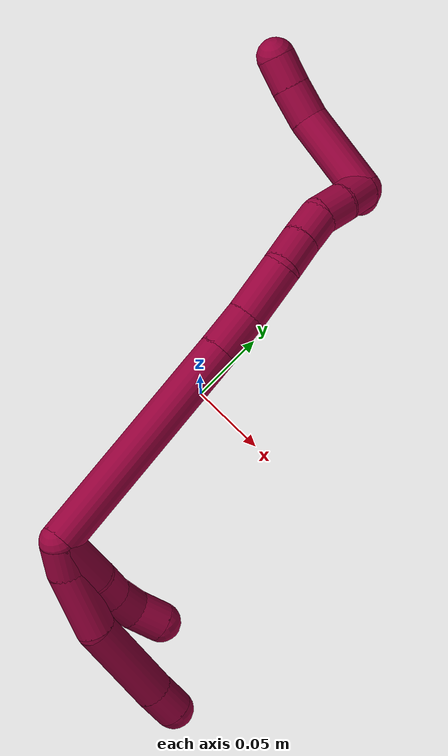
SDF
<sdf version="1.7">
 <world name="default">
  <model name="8">
   <static>0</static>
   <link name="8">
    <collision name="collision-cylinder-e_1_2_8">
     <pose>0.000541 -0.002257 -0.010693 2.93356 0.04943 0.465025</pose>
     <geometry><cylinder><radius>0.0125</radius><length>0.021884</length></cylinder></geometry>
     <surface>
      <friction><ode><mu>1.16</mu><mu2>1.16</mu2><slip1>0</slip1><slip2>0</slip2></ode></friction>
      <contact><ode><kp>1e+06</kp><kd>1</kd><max_vel>0</max_vel><min_depth>0.001</min_depth></ode></contact>
     </surface>
    </collision>
    <visual name="visual-cylinder-e_1_2_8">
     <pose>0.000541 -0.002257 -0.010693 2.93356 0.04943 0.465025</pose>
     <geometry><cylinder><radius>0.0125</radius><length>0.021884</length></cylinder></geometry>
     <material><ambient>0.584314 0 0.227451 1</ambient></material>
    </visual>
    <collision name="collision-cylinder-e_2_8_9">
     <pose>0.006916 -0.007237 -0.042164 3.0113 0.271568 2.25064</pose>
     <geometry><cylinder><radius>0.0125</radius><length>0.043506</length></cylinder></geometry>
     <surface>
      <friction><ode><mu>1.16</mu><mu2>1.16</mu2><slip1>0</slip1><slip2>0</slip2></ode></friction>
      <contact><ode><kp>1e+06</kp><kd>1</kd><max_vel>0</max_vel><min_depth>0.001</min_depth></ode></contact>
     </surface>
    </collision>
    <visual name="visual-cylinder-e_2_8_9">
     <pose>0.006916 -0.007237 -0.042164 3.0113 0.271568 2.25064</pose>
     <geometry><cylinder><radius>0.0125</radius><length>0.043506</length></cylinder></geometry>
     <material><ambient>0.584314 0 0.227451 1</ambient></material>
    </visual>
    <collision name="collision-cylinder-e_3_9_10">
     <pose>0.020113 -0.004919 -0.093479 -2.97802 0.233518 -1.92167</pose>
     <geometry><cylinder><radius>0.0125</radius><length>0.063626</length></cylinder></geometry>
     <surface>
      <friction><ode><mu>1.16</mu><mu2>1.16</mu2><slip1>0</slip1><slip2>0</slip2></ode></friction>
      <contact><ode><kp>1e+06</kp><kd>1</kd><max_vel>0</max_vel><min_depth>0.001</min_depth></ode></contact>
     </surface>
    </collision>
    <visual name="visual-cylinder-e_3_9_10">
     <pose>0.020113 -0.004919 -0.093479 -2.97802 0.233518 -1.92167</pose>
     <geometry><cylinder><radius>0.0125</radius><length>0.063626</length></cylinder></geometry>
     <material><ambient>0.584314 0 0.227451 1</ambient></material>
    </visual>
    <collision name="collision-cylinder-e_4_10_6">
     <pose>0.030614 0.00209 -0.133831 -2.94358 0.303843 -1.99053</pose>
     <geometry><cylinder><radius>0.0125</radius><length>0.020984</length></cylinder></geometry>
     <surface>
      <friction><ode><mu>1.16</mu><mu2>1.16</mu2><slip1>0</slip1><slip2>0</slip2></ode></friction>
      <contact><ode><kp>1e+06</kp><kd>1</kd><max_vel>0</max_vel><min_depth>0.001</min_depth></ode></contact>
     </surface>
    </collision>
    <visual name="visual-cylinder-e_4_10_6">
     <pose>0.030614 0.00209 -0.133831 -2.94358 0.303843 -1.99053</pose>
     <geometry><cylinder><radius>0.0125</radius><length>0.020984</length></cylinder></geometry>
     <material><ambient>0.584314 0 0.227451 1</ambient></material>
    </visual>
    <collision name="collision-cylinder-e_1_2_11">
     <pose>0.003571 0.004063 -0.018613 -2.92667 0.18529 -1.42198</pose>
     <geometry><cylinder><radius>0.0125</radius><length>0.038766</length></cylinder></geometry>
     <surface>
      <friction><ode><mu>1.16</mu><mu2>1.16</mu2><slip1>0</slip1><slip2>0</slip2></ode></friction>
      <contact><ode><kp>1e+06</kp><kd>1</kd><max_vel>0</max_vel><min_depth>0.001</min_depth></ode></contact>
     </surface>
    </collision>
    <visual name="visual-cylinder-e_1_2_11">
     <pose>0.003571 0.004063 -0.018613 -2.92667 0.18529 -1.42198</pose>
     <geometry><cylinder><radius>0.0125</radius><length>0.038766</length></cylinder></geometry>
     <material><ambient>0.584314 0 0.227451 1</ambient></material>
    </visual>
    <collision name="collision-cylinder-e_2_11_12">
     <pose>0.007161 0.010549 -0.047494 -2.90993 0.001796 -0.015434</pose>
     <geometry><cylinder><radius>0.0125</radius><length>0.0211</length></cylinder></geometry>
     <surface>
      <friction><ode><mu>1.16</mu><mu2>1.16</mu2><slip1>0</slip1><slip2>0</slip2></ode></friction>
      <contact><ode><kp>1e+06</kp><kd>1</kd><max_vel>0</max_vel><min_depth>0.001</min_depth></ode></contact>
     </surface>
    </collision>
    <visual name="visual-cylinder-e_2_11_12">
     <pose>0.007161 0.010549 -0.047494 -2.90993 0.001796 -0.015434</pose>
     <geometry><cylinder><radius>0.0125</radius><length>0.0211</length></cylinder></geometry>
     <material><ambient>0.584314 0 0.227451 1</ambient></material>
    </visual>
    <collision name="collision-cylinder-e_3_12_13">
     <pose>0.009683 0.01628 -0.066921 -2.79485 0.251609 -1.25089</pose>
     <geometry><cylinder><radius>0.0125</radius><length>0.02011</length></cylinder></geometry>
     <surface>
      <friction><ode><mu>1.16</mu><mu2>1.16</mu2><slip1>0</slip1><slip2>0</slip2></ode></friction>
      <contact><ode><kp>1e+06</kp><kd>1</kd><max_vel>0</max_vel><min_depth>0.001</min_depth></ode></contact>
     </surface>
    </collision>
    <visual name="visual-cylinder-e_3_12_13">
     <pose>0.009683 0.01628 -0.066921 -2.79485 0.251609 -1.25089</pose>
     <geometry><cylinder><radius>0.0125</radius><length>0.02011</length></cylinder></geometry>
     <material><ambient>0.584314 0 0.227451 1</ambient></material>
    </visual>
    <collision name="collision-cylinder-e_4_13_5">
     <pose>0.01716 0.023644 -0.083765 -2.65611 0.519878 -1.64216</pose>
     <geometry><cylinder><radius>0.0125</radius><length>0.020024</length></cylinder></geometry>
     <surface>
      <friction><ode><mu>1.16</mu><mu2>1.16</mu2><slip1>0</slip1><slip2>0</slip2></ode></friction>
      <contact><ode><kp>1e+06</kp><kd>1</kd><max_vel>0</max_vel><min_depth>0.001</min_depth></ode></contact>
     </surface>
    </collision>
    <visual name="visual-cylinder-e_4_13_5">
     <pose>0.01716 0.023644 -0.083765 -2.65611 0.519878 -1.64216</pose>
     <geometry><cylinder><radius>0.0125</radius><length>0.020024</length></cylinder></geometry>
     <material><ambient>0.584314 0 0.227451 1</ambient></material>
    </visual>
    <collision name="collision-cylinder-e_1_2_14">
     <pose>0.006733 0.072926 0.016134 -1.35307 0.089902 -0.072204</pose>
     <geometry><cylinder><radius>0.0125</radius><length>0.149984</length></cylinder></geometry>
     <surface>
      <friction><ode><mu>1.16</mu><mu2>1.16</mu2><slip1>0</slip1><slip2>0</slip2></ode></friction>
      <contact><ode><kp>1e+06</kp><kd>1</kd><max_vel>0</max_vel><min_depth>0.001</min_depth></ode></contact>
     </surface>
    </collision>
    <visual name="visual-cylinder-e_1_2_14">
     <pose>0.006733 0.072926 0.016134 -1.35307 0.089902 -0.072204</pose>
     <geometry><cylinder><radius>0.0125</radius><length>0.149984</length></cylinder></geometry>
     <material><ambient>0.584314 0 0.227451 1</ambient></material>
    </visual>
    <collision name="collision-cylinder-e_2_14_15">
     <pose>0.014685 0.15929 0.035501 -1.33472 0.087965 -0.06933</pose>
     <geometry><cylinder><radius>0.0125</radius><length>0.027752</length></cylinder></geometry>
     <surface>
      <friction><ode><mu>1.16</mu><mu2>1.16</mu2><slip1>0</slip1><slip2>0</slip2></ode></friction>
      <contact><ode><kp>1e+06</kp><kd>1</kd><max_vel>0</max_vel><min_depth>0.001</min_depth></ode></contact>
     </surface>
    </collision>
    <visual name="visual-cylinder-e_2_14_15">
     <pose>0.014685 0.15929 0.035501 -1.33472 0.087965 -0.06933</pose>
     <geometry><cylinder><radius>0.0125</radius><length>0.027752</length></cylinder></geometry>
     <material><ambient>0.584314 0 0.227451 1</ambient></material>
    </visual>
    <collision name="collision-cylinder-e_3_15_16">
     <pose>0.017874 0.190093 0.044787 -1.23532 0.106722 -0.075849</pose>
     <geometry><cylinder><radius>0.0125</radius><length>0.036988</length></cylinder></geometry>
     <surface>
      <friction><ode><mu>1.16</mu><mu2>1.16</mu2><slip1>0</slip1><slip2>0</slip2></ode></friction>
      <contact><ode><kp>1e+06</kp><kd>1</kd><max_vel>0</max_vel><min_depth>0.001</min_depth></ode></contact>
     </surface>
    </collision>
    <visual name="visual-cylinder-e_3_15_16">
     <pose>0.017874 0.190093 0.044787 -1.23532 0.106722 -0.075849</pose>
     <geometry><cylinder><radius>0.0125</radius><length>0.036988</length></cylinder></geometry>
     <material><ambient>0.584314 0 0.227451 1</ambient></material>
    </visual>
    <collision name="collision-cylinder-e_4_16_17">
     <pose>0.018491 0.218644 0.051814 -1.48404 -0.119879 0.109926</pose>
     <geometry><cylinder><radius>0.0125</radius><length>0.02262</length></cylinder></geometry>
     <surface>
      <friction><ode><mu>1.16</mu><mu2>1.16</mu2><slip1>0</slip1><slip2>0</slip2></ode></friction>
      <contact><ode><kp>1e+06</kp><kd>1</kd><max_vel>0</max_vel><min_depth>0.001</min_depth></ode></contact>
     </surface>
    </collision>
    <visual name="visual-cylinder-e_4_16_17">
     <pose>0.018491 0.218644 0.051814 -1.48404 -0.119879 0.109926</pose>
     <geometry><cylinder><radius>0.0125</radius><length>0.02262</length></cylinder></geometry>
     <material><ambient>0.584314 0 0.227451 1</ambient></material>
    </visual>
    <collision name="collision-cylinder-e_5_17_18">
     <pose>0.015972 0.240568 0.053329 -1.52039 -0.108053 0.102748</pose>
     <geometry><cylinder><radius>0.0125</radius><length>0.021628</length></cylinder></geometry>
     <surface>
      <friction><ode><mu>1.16</mu><mu2>1.16</mu2><slip1>0</slip1><slip2>0</slip2></ode></friction>
      <contact><ode><kp>1e+06</kp><kd>1</kd><max_vel>0</max_vel><min_depth>0.001</min_depth></ode></contact>
     </surface>
    </collision>
    <visual name="visual-cylinder-e_5_17_18">
     <pose>0.015972 0.240568 0.053329 -1.52039 -0.108053 0.102748</pose>
     <geometry><cylinder><radius>0.0125</radius><length>0.021628</length></cylinder></geometry>
     <material><ambient>0.584314 0 0.227451 1</ambient></material>
    </visual>
    <collision name="collision-cylinder-e_6_18_19">
     <pose>0.015279 0.261358 0.051442 -1.80786 0.045726 -0.058084</pose>
     <geometry><cylinder><radius>0.0125</radius><length>0.020708</length></cylinder></geometry>
     <surface>
      <friction><ode><mu>1.16</mu><mu2>1.16</mu2><slip1>0</slip1><slip2>0</slip2></ode></friction>
      <contact><ode><kp>1e+06</kp><kd>1</kd><max_vel>0</max_vel><min_depth>0.001</min_depth></ode></contact>
     </surface>
    </collision>
    <visual name="visual-cylinder-e_6_18_19">
     <pose>0.015279 0.261358 0.051442 -1.80786 0.045726 -0.058084</pose>
     <geometry><cylinder><radius>0.0125</radius><length>0.020708</length></cylinder></geometry>
     <material><ambient>0.584314 0 0.227451 1</ambient></material>
    </visual>
    <collision name="collision-cylinder-e_7_19_1">
     <pose>0.014999 0.281148 0.046206 -1.85143 -0.074269 0.098665</pose>
     <geometry><cylinder><radius>0.0125</radius><length>0.02032</length></cylinder></geometry>
     <surface>
      <friction><ode><mu>1.16</mu><mu2>1.16</mu2><slip1>0</slip1><slip2>0</slip2></ode></friction>
      <contact><ode><kp>1e+06</kp><kd>1</kd><max_vel>0</max_vel><min_depth>0.001</min_depth></ode></contact>
     </surface>
    </collision>
    <visual name="visual-cylinder-e_7_19_1">
     <pose>0.014999 0.281148 0.046206 -1.85143 -0.074269 0.098665</pose>
     <geometry><cylinder><radius>0.0125</radius><length>0.02032</length></cylinder></geometry>
     <material><ambient>0.584314 0 0.227451 1</ambient></material>
    </visual>
    <collision name="collision-cylinder-e_1_1_20">
     <pose>0.007262 0.296496 0.035771 -2.50736 -0.635329 1.57265</pose>
     <geometry><cylinder><radius>0.0125</radius><length>0.023535</length></cylinder></geometry>
     <surface>
      <friction><ode><mu>1.16</mu><mu2>1.16</mu2><slip1>0</slip1><slip2>0</slip2></ode></friction>
      <contact><ode><kp>1e+06</kp><kd>1</kd><max_vel>0</max_vel><min_depth>0.001</min_depth></ode></contact>
     </surface>
    </collision>
    <visual name="visual-cylinder-e_1_1_20">
     <pose>0.007262 0.296496 0.035771 -2.50736 -0.635329 1.57265</pose>
     <geometry><cylinder><radius>0.0125</radius><length>0.023535</length></cylinder></geometry>
     <material><ambient>0.584314 0 0.227451 1</ambient></material>
    </visual>
    <collision name="collision-cylinder-e_2_20_21">
     <pose>-0.006163 0.306589 0.021664 -2.53641 -0.685512 1.70411</pose>
     <geometry><cylinder><radius>0.0125</radius><length>0.02035</length></cylinder></geometry>
     <surface>
      <friction><ode><mu>1.16</mu><mu2>1.16</mu2><slip1>0</slip1><slip2>0</slip2></ode></friction>
      <contact><ode><kp>1e+06</kp><kd>1</kd><max_vel>0</max_vel><min_depth>0.001</min_depth></ode></contact>
     </surface>
    </collision>
    <visual name="visual-cylinder-e_2_20_21">
     <pose>-0.006163 0.306589 0.021664 -2.53641 -0.685512 1.70411</pose>
     <geometry><cylinder><radius>0.0125</radius><length>0.02035</length></cylinder></geometry>
     <material><ambient>0.584314 0 0.227451 1</ambient></material>
    </visual>
    <collision name="collision-cylinder-e_3_21_22">
     <pose>-0.022511 0.319196 0.004759 -2.47961 -0.643096 1.5397</pose>
     <geometry><cylinder><radius>0.0125</radius><length>0.033039</length></cylinder></geometry>
     <surface>
      <friction><ode><mu>1.16</mu><mu2>1.16</mu2><slip1>0</slip1><slip2>0</slip2></ode></friction>
      <contact><ode><kp>1e+06</kp><kd>1</kd><max_vel>0</max_vel><min_depth>0.001</min_depth></ode></contact>
     </surface>
    </collision>
    <visual name="visual-cylinder-e_3_21_22">
     <pose>-0.022511 0.319196 0.004759 -2.47961 -0.643096 1.5397</pose>
     <geometry><cylinder><radius>0.0125</radius><length>0.033039</length></cylinder></geometry>
     <material><ambient>0.584314 0 0.227451 1</ambient></material>
    </visual>
    <collision name="collision-cylinder-e_4_22_4">
     <pose>-0.038903 0.332091 -0.013934 -2.61827 -0.596943 1.70912</pose>
     <geometry><cylinder><radius>0.0125</radius><length>0.023077</length></cylinder></geometry>
     <surface>
      <friction><ode><mu>1.16</mu><mu2>1.16</mu2><slip1>0</slip1><slip2>0</slip2></ode></friction>
      <contact><ode><kp>1e+06</kp><kd>1</kd><max_vel>0</max_vel><min_depth>0.001</min_depth></ode></contact>
     </surface>
    </collision>
    <visual name="visual-cylinder-e_4_22_4">
     <pose>-0.038903 0.332091 -0.013934 -2.61827 -0.596943 1.70912</pose>
     <geometry><cylinder><radius>0.0125</radius><length>0.023077</length></cylinder></geometry>
     <material><ambient>0.584314 0 0.227451 1</ambient></material>
    </visual>
    <collision name="collision-cylinder-e_1_1_23">
     <pose>-0.007296 0.296906 0.05998 -0.348441 -0.884647 0.166335</pose>
     <geometry><cylinder><radius>0.0125</radius><length>0.055683</length></cylinder></geometry>
     <surface>
      <friction><ode><mu>1.16</mu><mu2>1.16</mu2><slip1>0</slip1><slip2>0</slip2></ode></friction>
      <contact><ode><kp>1e+06</kp><kd>1</kd><max_vel>0</max_vel><min_depth>0.001</min_depth></ode></contact>
     </surface>
    </collision>
    <visual name="visual-cylinder-e_1_1_23">
     <pose>-0.007296 0.296906 0.05998 -0.348441 -0.884647 0.166335</pose>
     <geometry><cylinder><radius>0.0125</radius><length>0.055683</length></cylinder></geometry>
     <material><ambient>0.584314 0 0.227451 1</ambient></material>
    </visual>
    <collision name="collision-cylinder-e_2_23_24">
     <pose>-0.035684 0.305589 0.085738 -0.282132 -0.621709 0.091183</pose>
     <geometry><cylinder><radius>0.0125</radius><length>0.023512</length></cylinder></geometry>
     <surface>
      <friction><ode><mu>1.16</mu><mu2>1.16</mu2><slip1>0</slip1><slip2>0</slip2></ode></friction>
      <contact><ode><kp>1e+06</kp><kd>1</kd><max_vel>0</max_vel><min_depth>0.001</min_depth></ode></contact>
     </surface>
    </collision>
    <visual name="visual-cylinder-e_2_23_24">
     <pose>-0.035684 0.305589 0.085738 -0.282132 -0.621709 0.091183</pose>
     <geometry><cylinder><radius>0.0125</radius><length>0.023512</length></cylinder></geometry>
     <material><ambient>0.584314 0 0.227451 1</ambient></material>
    </visual>
    <collision name="collision-cylinder-e_3_24_3">
     <pose>-0.048016 0.310867 0.103358 -0.300624 -0.555393 0.086294</pose>
     <geometry><cylinder><radius>0.0125</radius><length>0.020804</length></cylinder></geometry>
     <surface>
      <friction><ode><mu>1.16</mu><mu2>1.16</mu2><slip1>0</slip1><slip2>0</slip2></ode></friction>
      <contact><ode><kp>1e+06</kp><kd>1</kd><max_vel>0</max_vel><min_depth>0.001</min_depth></ode></contact>
     </surface>
    </collision>
    <visual name="visual-cylinder-e_3_24_3">
     <pose>-0.048016 0.310867 0.103358 -0.300624 -0.555393 0.086294</pose>
     <geometry><cylinder><radius>0.0125</radius><length>0.020804</length></cylinder></geometry>
     <material><ambient>0.584314 0 0.227451 1</ambient></material>
    </visual>
    <collision name="collision-sphere-3">
     <pose>-0.053501 0.313485 0.111801 0 -0 0</pose>
     <geometry><sphere><radius>0.0125</radius></sphere></geometry>
     <surface>
      <friction><ode><mu>1.16</mu><mu2>1.16</mu2><slip1>0</slip1><slip2>0</slip2></ode></friction>
      <contact><ode><kp>1e+06</kp><kd>1</kd><max_vel>0</max_vel><min_depth>0.001</min_depth></ode></contact>
     </surface>
    </collision>
    <visual name="visual-sphere-3">
     <pose>-0.053501 0.313485 0.111801 0 -0 0</pose>
     <geometry><sphere><radius>0.0125</radius></sphere></geometry>
     <material><ambient>0.584314 0 0.227451 1</ambient></material>
    </visual>
    <collision name="collision-sphere-24">
     <pose>-0.042531 0.30825 0.094916 0 -0 0</pose>
     <geometry><sphere><radius>0.0125</radius></sphere></geometry>
     <surface>
      <friction><ode><mu>1.16</mu><mu2>1.16</mu2><slip1>0</slip1><slip2>0</slip2></ode></friction>
      <contact><ode><kp>1e+06</kp><kd>1</kd><max_vel>0</max_vel><min_depth>0.001</min_depth></ode></contact>
     </surface>
    </collision>
    <visual name="visual-sphere-24">
     <pose>-0.042531 0.30825 0.094916 0 -0 0</pose>
     <geometry><sphere><radius>0.0125</radius></sphere></geometry>
     <material><ambient>0.584314 0 0.227451 1</ambient></material>
    </visual>
    <collision name="collision-sphere-23">
     <pose>-0.028837 0.302929 0.076559 0 -0 0</pose>
     <geometry><sphere><radius>0.0125</radius></sphere></geometry>
     <surface>
      <friction><ode><mu>1.16</mu><mu2>1.16</mu2><slip1>0</slip1><slip2>0</slip2></ode></friction>
      <contact><ode><kp>1e+06</kp><kd>1</kd><max_vel>0</max_vel><min_depth>0.001</min_depth></ode></contact>
     </surface>
    </collision>
    <visual name="visual-sphere-23">
     <pose>-0.028837 0.302929 0.076559 0 -0 0</pose>
     <geometry><sphere><radius>0.0125</radius></sphere></geometry>
     <material><ambient>0.584314 0 0.227451 1</ambient></material>
    </visual>
    <collision name="collision-sphere-4">
     <pose>-0.045389 0.33686 -0.022199 0 -0 0</pose>
     <geometry><sphere><radius>0.0125</radius></sphere></geometry>
     <surface>
      <friction><ode><mu>1.16</mu><mu2>1.16</mu2><slip1>0</slip1><slip2>0</slip2></ode></friction>
      <contact><ode><kp>1e+06</kp><kd>1</kd><max_vel>0</max_vel><min_depth>0.001</min_depth></ode></contact>
     </surface>
    </collision>
    <visual name="visual-sphere-4">
     <pose>-0.045389 0.33686 -0.022199 0 -0 0</pose>
     <geometry><sphere><radius>0.0125</radius></sphere></geometry>
     <material><ambient>0.584314 0 0.227451 1</ambient></material>
    </visual>
    <collision name="collision-sphere-22">
     <pose>-0.032417 0.327322 -0.005668 0 -0 0</pose>
     <geometry><sphere><radius>0.0125</radius></sphere></geometry>
     <surface>
      <friction><ode><mu>1.16</mu><mu2>1.16</mu2><slip1>0</slip1><slip2>0</slip2></ode></friction>
      <contact><ode><kp>1e+06</kp><kd>1</kd><max_vel>0</max_vel><min_depth>0.001</min_depth></ode></contact>
     </surface>
    </collision>
    <visual name="visual-sphere-22">
     <pose>-0.032417 0.327322 -0.005668 0 -0 0</pose>
     <geometry><sphere><radius>0.0125</radius></sphere></geometry>
     <material><ambient>0.584314 0 0.227451 1</ambient></material>
    </visual>
    <collision name="collision-sphere-21">
     <pose>-0.012604 0.31107 0.015186 0 -0 0</pose>
     <geometry><sphere><radius>0.0125</radius></sphere></geometry>
     <surface>
      <friction><ode><mu>1.16</mu><mu2>1.16</mu2><slip1>0</slip1><slip2>0</slip2></ode></friction>
      <contact><ode><kp>1e+06</kp><kd>1</kd><max_vel>0</max_vel><min_depth>0.001</min_depth></ode></contact>
     </surface>
    </collision>
    <visual name="visual-sphere-21">
     <pose>-0.012604 0.31107 0.015186 0 -0 0</pose>
     <geometry><sphere><radius>0.0125</radius></sphere></geometry>
     <material><ambient>0.584314 0 0.227451 1</ambient></material>
    </visual>
    <collision name="collision-sphere-20">
     <pose>0.000279 0.302108 0.028142 0 -0 0</pose>
     <geometry><sphere><radius>0.0125</radius></sphere></geometry>
     <surface>
      <friction><ode><mu>1.16</mu><mu2>1.16</mu2><slip1>0</slip1><slip2>0</slip2></ode></friction>
      <contact><ode><kp>1e+06</kp><kd>1</kd><max_vel>0</max_vel><min_depth>0.001</min_depth></ode></contact>
     </surface>
    </collision>
    <visual name="visual-sphere-20">
     <pose>0.000279 0.302108 0.028142 0 -0 0</pose>
     <geometry><sphere><radius>0.0125</radius></sphere></geometry>
     <material><ambient>0.584314 0 0.227451 1</ambient></material>
    </visual>
    <collision name="collision-sphere-11">
     <pose>0.007142 0.008126 -0.037226 0 -0 0</pose>
     <geometry><sphere><radius>0.0125</radius></sphere></geometry>
     <surface>
      <friction><ode><mu>1.16</mu><mu2>1.16</mu2><slip1>0</slip1><slip2>0</slip2></ode></friction>
      <contact><ode><kp>1e+06</kp><kd>1</kd><max_vel>0</max_vel><min_depth>0.001</min_depth></ode></contact>
     </surface>
    </collision>
    <visual name="visual-sphere-11">
     <pose>0.007142 0.008126 -0.037226 0 -0 0</pose>
     <geometry><sphere><radius>0.0125</radius></sphere></geometry>
     <material><ambient>0.584314 0 0.227451 1</ambient></material>
    </visual>
    <collision name="collision-sphere-6">
     <pose>0.033753 0.00406 -0.143647 0 -0 0</pose>
     <geometry><sphere><radius>0.0125</radius></sphere></geometry>
     <surface>
      <friction><ode><mu>1.16</mu><mu2>1.16</mu2><slip1>0</slip1><slip2>0</slip2></ode></friction>
      <contact><ode><kp>1e+06</kp><kd>1</kd><max_vel>0</max_vel><min_depth>0.001</min_depth></ode></contact>
     </surface>
    </collision>
    <visual name="visual-sphere-6">
     <pose>0.033753 0.00406 -0.143647 0 -0 0</pose>
     <geometry><sphere><radius>0.0125</radius></sphere></geometry>
     <material><ambient>0.584314 0 0.227451 1</ambient></material>
    </visual>
    <collision name="collision-sphere-10">
     <pose>0.027475 0.000121 -0.124015 0 -0 0</pose>
     <geometry><sphere><radius>0.0125</radius></sphere></geometry>
     <surface>
      <friction><ode><mu>1.16</mu><mu2>1.16</mu2><slip1>0</slip1><slip2>0</slip2></ode></friction>
      <contact><ode><kp>1e+06</kp><kd>1</kd><max_vel>0</max_vel><min_depth>0.001</min_depth></ode></contact>
     </surface>
    </collision>
    <visual name="visual-sphere-10">
     <pose>0.027475 0.000121 -0.124015 0 -0 0</pose>
     <geometry><sphere><radius>0.0125</radius></sphere></geometry>
     <material><ambient>0.584314 0 0.227451 1</ambient></material>
    </visual>
    <collision name="collision-sphere-9">
     <pose>0.012751 -0.00996 -0.062942 0 -0 0</pose>
     <geometry><sphere><radius>0.0125</radius></sphere></geometry>
     <surface>
      <friction><ode><mu>1.16</mu><mu2>1.16</mu2><slip1>0</slip1><slip2>0</slip2></ode></friction>
      <contact><ode><kp>1e+06</kp><kd>1</kd><max_vel>0</max_vel><min_depth>0.001</min_depth></ode></contact>
     </surface>
    </collision>
    <visual name="visual-sphere-9">
     <pose>0.012751 -0.00996 -0.062942 0 -0 0</pose>
     <geometry><sphere><radius>0.0125</radius></sphere></geometry>
     <material><ambient>0.584314 0 0.227451 1</ambient></material>
    </visual>
    <collision name="collision-sphere-2">
     <geometry><sphere><radius>0.0125</radius></sphere></geometry>
     <surface>
      <friction><ode><mu>1.16</mu><mu2>1.16</mu2><slip1>0</slip1><slip2>0</slip2></ode></friction>
      <contact><ode><kp>1e+06</kp><kd>1</kd><max_vel>0</max_vel><min_depth>0.001</min_depth></ode></contact>
     </surface>
    </collision>
    <visual name="visual-sphere-2">
     <geometry><sphere><radius>0.0125</radius></sphere></geometry>
     <material><ambient>0.584314 0 0.227451 1</ambient></material>
    </visual>
    <collision name="collision-sphere-19">
     <pose>0.015753 0.271412 0.049013 0 -0 0</pose>
     <geometry><sphere><radius>0.0125</radius></sphere></geometry>
     <surface>
      <friction><ode><mu>1.16</mu><mu2>1.16</mu2><slip1>0</slip1><slip2>0</slip2></ode></friction>
      <contact><ode><kp>1e+06</kp><kd>1</kd><max_vel>0</max_vel><min_depth>0.001</min_depth></ode></contact>
     </surface>
    </collision>
    <visual name="visual-sphere-19">
     <pose>0.015753 0.271412 0.049013 0 -0 0</pose>
     <geometry><sphere><radius>0.0125</radius></sphere></geometry>
     <material><ambient>0.584314 0 0.227451 1</ambient></material>
    </visual>
    <collision name="collision-sphere-8">
     <pose>0.001081 -0.004514 -0.021386 0 -0 0</pose>
     <geometry><sphere><radius>0.0125</radius></sphere></geometry>
     <surface>
      <friction><ode><mu>1.16</mu><mu2>1.16</mu2><slip1>0</slip1><slip2>0</slip2></ode></friction>
      <contact><ode><kp>1e+06</kp><kd>1</kd><max_vel>0</max_vel><min_depth>0.001</min_depth></ode></contact>
     </surface>
    </collision>
    <visual name="visual-sphere-8">
     <pose>0.001081 -0.004514 -0.021386 0 -0 0</pose>
     <geometry><sphere><radius>0.0125</radius></sphere></geometry>
     <material><ambient>0.584314 0 0.227451 1</ambient></material>
    </visual>
    <collision name="collision-sphere-12">
     <pose>0.00718 0.012971 -0.057762 0 -0 0</pose>
     <geometry><sphere><radius>0.0125</radius></sphere></geometry>
     <surface>
      <friction><ode><mu>1.16</mu><mu2>1.16</mu2><slip1>0</slip1><slip2>0</slip2></ode></friction>
      <contact><ode><kp>1e+06</kp><kd>1</kd><max_vel>0</max_vel><min_depth>0.001</min_depth></ode></contact>
     </surface>
    </collision>
    <visual name="visual-sphere-12">
     <pose>0.00718 0.012971 -0.057762 0 -0 0</pose>
     <geometry><sphere><radius>0.0125</radius></sphere></geometry>
     <material><ambient>0.584314 0 0.227451 1</ambient></material>
    </visual>
    <collision name="collision-sphere-13">
     <pose>0.012187 0.01959 -0.07608 0 -0 0</pose>
     <geometry><sphere><radius>0.0125</radius></sphere></geometry>
     <surface>
      <friction><ode><mu>1.16</mu><mu2>1.16</mu2><slip1>0</slip1><slip2>0</slip2></ode></friction>
      <contact><ode><kp>1e+06</kp><kd>1</kd><max_vel>0</max_vel><min_depth>0.001</min_depth></ode></contact>
     </surface>
    </collision>
    <visual name="visual-sphere-13">
     <pose>0.012187 0.01959 -0.07608 0 -0 0</pose>
     <geometry><sphere><radius>0.0125</radius></sphere></geometry>
     <material><ambient>0.584314 0 0.227451 1</ambient></material>
    </visual>
    <collision name="collision-sphere-5">
     <pose>0.022134 0.027699 -0.09145 0 -0 0</pose>
     <geometry><sphere><radius>0.0125</radius></sphere></geometry>
     <surface>
      <friction><ode><mu>1.16</mu><mu2>1.16</mu2><slip1>0</slip1><slip2>0</slip2></ode></friction>
      <contact><ode><kp>1e+06</kp><kd>1</kd><max_vel>0</max_vel><min_depth>0.001</min_depth></ode></contact>
     </surface>
    </collision>
    <visual name="visual-sphere-5">
     <pose>0.022134 0.027699 -0.09145 0 -0 0</pose>
     <geometry><sphere><radius>0.0125</radius></sphere></geometry>
     <material><ambient>0.584314 0 0.227451 1</ambient></material>
    </visual>
    <collision name="collision-sphere-14">
     <pose>0.013466 0.145851 0.032268 0 -0 0</pose>
     <geometry><sphere><radius>0.0125</radius></sphere></geometry>
     <surface>
      <friction><ode><mu>1.16</mu><mu2>1.16</mu2><slip1>0</slip1><slip2>0</slip2></ode></friction>
      <contact><ode><kp>1e+06</kp><kd>1</kd><max_vel>0</max_vel><min_depth>0.001</min_depth></ode></contact>
     </surface>
    </collision>
    <visual name="visual-sphere-14">
     <pose>0.013466 0.145851 0.032268 0 -0 0</pose>
     <geometry><sphere><radius>0.0125</radius></sphere></geometry>
     <material><ambient>0.584314 0 0.227451 1</ambient></material>
    </visual>
    <collision name="collision-sphere-15">
     <pose>0.015904 0.172729 0.038733 0 -0 0</pose>
     <geometry><sphere><radius>0.0125</radius></sphere></geometry>
     <surface>
      <friction><ode><mu>1.16</mu><mu2>1.16</mu2><slip1>0</slip1><slip2>0</slip2></ode></friction>
      <contact><ode><kp>1e+06</kp><kd>1</kd><max_vel>0</max_vel><min_depth>0.001</min_depth></ode></contact>
     </surface>
    </collision>
    <visual name="visual-sphere-15">
     <pose>0.015904 0.172729 0.038733 0 -0 0</pose>
     <geometry><sphere><radius>0.0125</radius></sphere></geometry>
     <material><ambient>0.584314 0 0.227451 1</ambient></material>
    </visual>
    <collision name="collision-sphere-16">
     <pose>0.019844 0.207457 0.050841 0 -0 0</pose>
     <geometry><sphere><radius>0.0125</radius></sphere></geometry>
     <surface>
      <friction><ode><mu>1.16</mu><mu2>1.16</mu2><slip1>0</slip1><slip2>0</slip2></ode></friction>
      <contact><ode><kp>1e+06</kp><kd>1</kd><max_vel>0</max_vel><min_depth>0.001</min_depth></ode></contact>
     </surface>
    </collision>
    <visual name="visual-sphere-16">
     <pose>0.019844 0.207457 0.050841 0 -0 0</pose>
     <geometry><sphere><radius>0.0125</radius></sphere></geometry>
     <material><ambient>0.584314 0 0.227451 1</ambient></material>
    </visual>
    <collision name="collision-sphere-17">
     <pose>0.017139 0.229831 0.052787 0 -0 0</pose>
     <geometry><sphere><radius>0.0125</radius></sphere></geometry>
     <surface>
      <friction><ode><mu>1.16</mu><mu2>1.16</mu2><slip1>0</slip1><slip2>0</slip2></ode></friction>
      <contact><ode><kp>1e+06</kp><kd>1</kd><max_vel>0</max_vel><min_depth>0.001</min_depth></ode></contact>
     </surface>
    </collision>
    <visual name="visual-sphere-17">
     <pose>0.017139 0.229831 0.052787 0 -0 0</pose>
     <geometry><sphere><radius>0.0125</radius></sphere></geometry>
     <material><ambient>0.584314 0 0.227451 1</ambient></material>
    </visual>
    <collision name="collision-sphere-18">
     <pose>0.014806 0.251305 0.053871 0 -0 0</pose>
     <geometry><sphere><radius>0.0125</radius></sphere></geometry>
     <surface>
      <friction><ode><mu>1.16</mu><mu2>1.16</mu2><slip1>0</slip1><slip2>0</slip2></ode></friction>
      <contact><ode><kp>1e+06</kp><kd>1</kd><max_vel>0</max_vel><min_depth>0.001</min_depth></ode></contact>
     </surface>
    </collision>
    <visual name="visual-sphere-18">
     <pose>0.014806 0.251305 0.053871 0 -0 0</pose>
     <geometry><sphere><radius>0.0125</radius></sphere></geometry>
     <material><ambient>0.584314 0 0.227451 1</ambient></material>
    </visual>
    <collision name="collision-sphere-1">
     <pose>0.014245 0.290884 0.0434 0 -0 0</pose>
     <geometry><sphere><radius>0.0125</radius></sphere></geometry>
     <surface>
      <friction><ode><mu>1.16</mu><mu2>1.16</mu2><slip1>0</slip1><slip2>0</slip2></ode></friction>
      <contact><ode><kp>1e+06</kp><kd>1</kd><max_vel>0</max_vel><min_depth>0.001</min_depth></ode></contact>
     </surface>
    </collision>
    <visual name="visual-sphere-1">
     <pose>0.014245 0.290884 0.0434 0 -0 0</pose>
     <geometry><sphere><radius>0.0125</radius></sphere></geometry>
     <material><ambient>0.584314 0 0.227451 1</ambient></material>
    </visual>
    <inertial>
     <pose>0.003581 0.141097 0.003259 0 -0 0</pose>
     <mass>0.75</mass>
     <inertia>
      <ixx>0.000263</ixx>
      <ixy>0</ixy>
      <ixz>0</ixz>
      <iyy>9.5e-05</iyy>
      <iyz>0</iyz>
      <izz>-0.000339</izz>
     </inertia>
    </inertial>
   </link>
   <pose>0.028513 -0.146381 0.146824 -0.309013 -0.560719 0.227984</pose>
  </model>
 </world>
</sdf>
